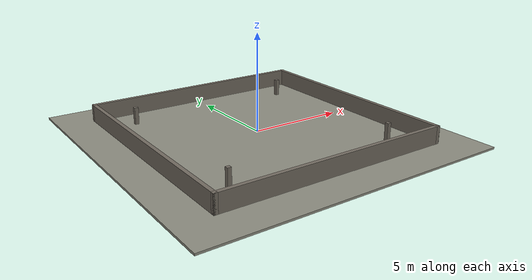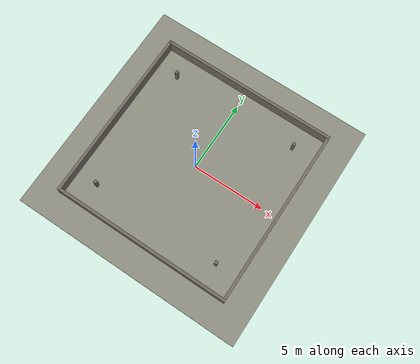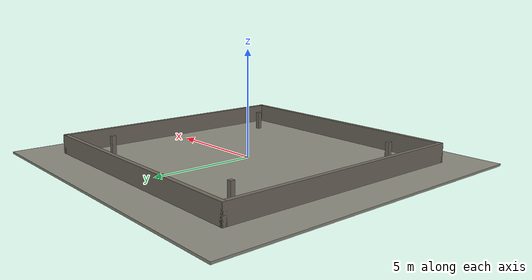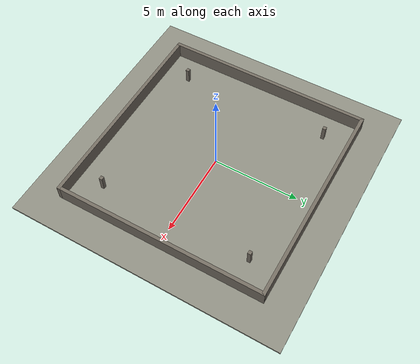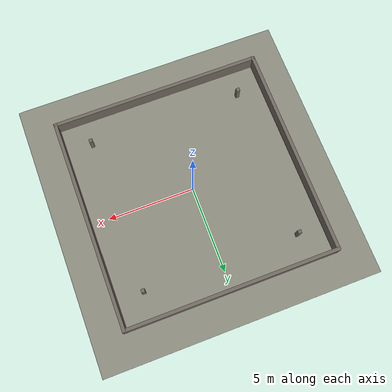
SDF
<?xml version="1.0" ?>
<sdf version="1.7">
  <world name="nav_empty">
    <physics type="ode">
      <max_step_size>0.002</max_step_size>
    </physics>

    <light name="sun" type="directional">
      <cast_shadows>true</cast_shadows>
      <pose>0 0 10 0 0 0</pose>
      <diffuse>0.8 0.8 0.8 1</diffuse>
      <specular>0.3 0.3 0.3 1</specular>
      <attenuation>
        <range>1000</range>
        <constant>0.9</constant>
        <linear>0.01</linear>
        <quadratic>0.001</quadratic>
      </attenuation>
      <direction>-0.5 0.3 -1.0</direction>
    </light>

    <model name="ground_plane">
      <static>true</static>
      <pose>0 0 -0.05 0 0 0</pose>
      <link name="link">
        <collision name="collision">
          <geometry>
            <box><size>16.0 16.0 0.1</size></box>
          </geometry>
          <surface>
            <friction>
              <ode><mu>100</mu><mu2>50</mu2></ode>
            </friction>
          </surface>
        </collision>
        <visual name="visual">
          <geometry>
            <box><size>16.0 16.0 0.1</size></box>
          </geometry>
          <material>
            <ambient>0.55 0.55 0.5 1</ambient>
            <diffuse>0.55 0.55 0.5 1</diffuse>
          </material>
        </visual>
      </link>
    </model>

    <model name="obstacle_00">
      <static>true</static>
      <pose>0.000 -6.100 0 0 0 0</pose>
      <link name="link">
        <collision name="collision">
          <geometry>
            <box><size>12.400 0.200 1.800</size></box>
          </geometry>
        </collision>
        <visual name="visual">
          <geometry>
            <box><size>12.400 0.200 1.800</size></box>
          </geometry>
          <material>
            <ambient>0.45 0.42 0.38 1</ambient>
            <diffuse>0.45 0.42 0.38 1</diffuse>
            <specular>0.1 0.1 0.1 1</specular>
          </material>
        </visual>
      </link>
    </model>

    <model name="obstacle_01">
      <static>true</static>
      <pose>0.000 6.100 0 0 0 0</pose>
      <link name="link">
        <collision name="collision">
          <geometry>
            <box><size>12.400 0.200 1.800</size></box>
          </geometry>
        </collision>
        <visual name="visual">
          <geometry>
            <box><size>12.400 0.200 1.800</size></box>
          </geometry>
          <material>
            <ambient>0.45 0.42 0.38 1</ambient>
            <diffuse>0.45 0.42 0.38 1</diffuse>
            <specular>0.1 0.1 0.1 1</specular>
          </material>
        </visual>
      </link>
    </model>

    <model name="obstacle_02">
      <static>true</static>
      <pose>-6.100 0.000 0 0 0 0</pose>
      <link name="link">
        <collision name="collision">
          <geometry>
            <box><size>0.200 12.400 1.800</size></box>
          </geometry>
        </collision>
        <visual name="visual">
          <geometry>
            <box><size>0.200 12.400 1.800</size></box>
          </geometry>
          <material>
            <ambient>0.45 0.42 0.38 1</ambient>
            <diffuse>0.45 0.42 0.38 1</diffuse>
            <specular>0.1 0.1 0.1 1</specular>
          </material>
        </visual>
      </link>
    </model>

    <model name="obstacle_03">
      <static>true</static>
      <pose>6.100 0.000 0 0 0 0</pose>
      <link name="link">
        <collision name="collision">
          <geometry>
            <box><size>0.200 12.400 1.800</size></box>
          </geometry>
        </collision>
        <visual name="visual">
          <geometry>
            <box><size>0.200 12.400 1.800</size></box>
          </geometry>
          <material>
            <ambient>0.45 0.42 0.38 1</ambient>
            <diffuse>0.45 0.42 0.38 1</diffuse>
            <specular>0.1 0.1 0.1 1</specular>
          </material>
        </visual>
      </link>
    </model>

    <model name="obstacle_04">
      <static>true</static>
      <pose>-4.500 -4.500 0 0 0 0</pose>
      <link name="link">
        <collision name="collision">
          <geometry>
            <box><size>0.200 0.200 1.800</size></box>
          </geometry>
        </collision>
        <visual name="visual">
          <geometry>
            <box><size>0.200 0.200 1.800</size></box>
          </geometry>
          <material>
            <ambient>0.45 0.42 0.38 1</ambient>
            <diffuse>0.45 0.42 0.38 1</diffuse>
            <specular>0.1 0.1 0.1 1</specular>
          </material>
        </visual>
      </link>
    </model>

    <model name="obstacle_05">
      <static>true</static>
      <pose>4.500 4.500 0 0 0 0</pose>
      <link name="link">
        <collision name="collision">
          <geometry>
            <box><size>0.200 0.200 1.800</size></box>
          </geometry>
        </collision>
        <visual name="visual">
          <geometry>
            <box><size>0.200 0.200 1.800</size></box>
          </geometry>
          <material>
            <ambient>0.45 0.42 0.38 1</ambient>
            <diffuse>0.45 0.42 0.38 1</diffuse>
            <specular>0.1 0.1 0.1 1</specular>
          </material>
        </visual>
      </link>
    </model>

    <model name="obstacle_06">
      <static>true</static>
      <pose>-4.500 4.500 0 0 0 0</pose>
      <link name="link">
        <collision name="collision">
          <geometry>
            <box><size>0.200 0.200 1.800</size></box>
          </geometry>
        </collision>
        <visual name="visual">
          <geometry>
            <box><size>0.200 0.200 1.800</size></box>
          </geometry>
          <material>
            <ambient>0.45 0.42 0.38 1</ambient>
            <diffuse>0.45 0.42 0.38 1</diffuse>
            <specular>0.1 0.1 0.1 1</specular>
          </material>
        </visual>
      </link>
    </model>

    <model name="obstacle_07">
      <static>true</static>
      <pose>4.500 -4.500 0 0 0 0</pose>
      <link name="link">
        <collision name="collision">
          <geometry>
            <box><size>0.200 0.200 1.800</size></box>
          </geometry>
        </collision>
        <visual name="visual">
          <geometry>
            <box><size>0.200 0.200 1.800</size></box>
          </geometry>
          <material>
            <ambient>0.45 0.42 0.38 1</ambient>
            <diffuse>0.45 0.42 0.38 1</diffuse>
            <specular>0.1 0.1 0.1 1</specular>
          </material>
        </visual>
      </link>
    </model>

  </world>
</sdf>
